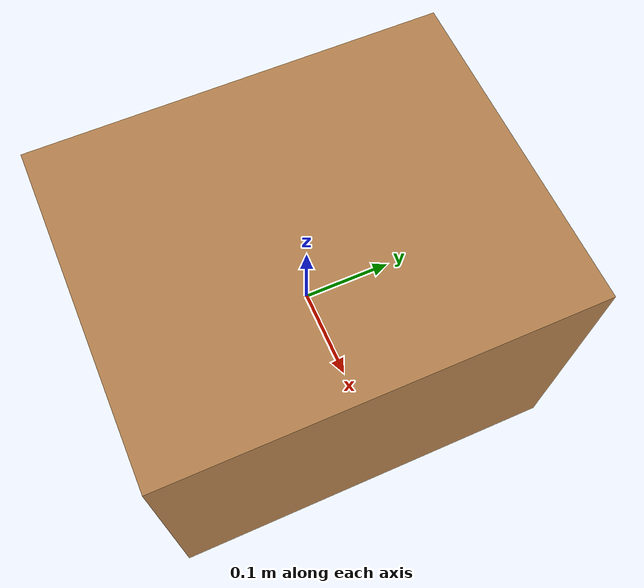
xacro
<?xml version="1.0"?>
<robot name="box"
      >
<link name="my_box">
    <inertial>
      <origin xyz="0 0 0"/>
      <mass value="0.5" />
      <inertia  ixx="0.0005" ixy="0.0"  ixz="0.0"  iyy="0.0005"  iyz="0.0"  izz="0.0005" />
    </inertial>
    <visual>
      <origin xyz="0 0 0"/>
      <geometry>
       <box size="0.37 0.46 0.33"/>
      </geometry>
    </visual>
    <collision>
      <origin xyz="0 0 0"/>
      <geometry>
        <box size="0.37 0.46 0.33"/>
      </geometry>
    </collision>
  </link>
  <gazebo reference="my_box">
    <material>Gazebo/Wood</material>
           <mu1>100000.0</mu1>
            <mu2>100000.0</mu2>

           <kp>100000</kp>
           <kd>2.0</kd>
  </gazebo>
</robot>
